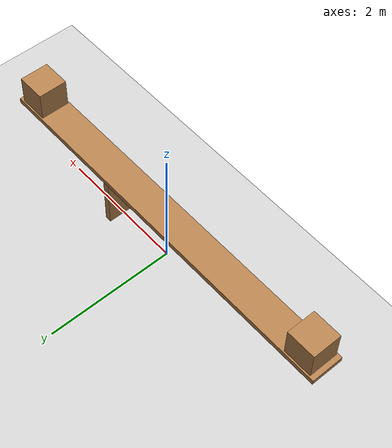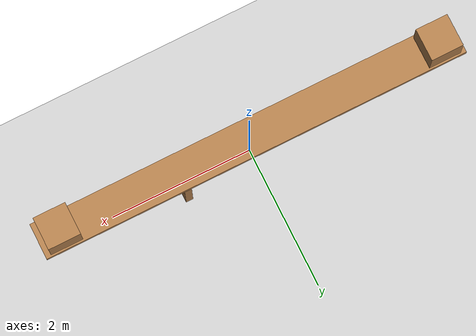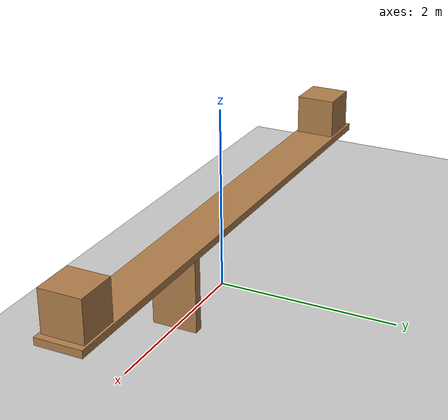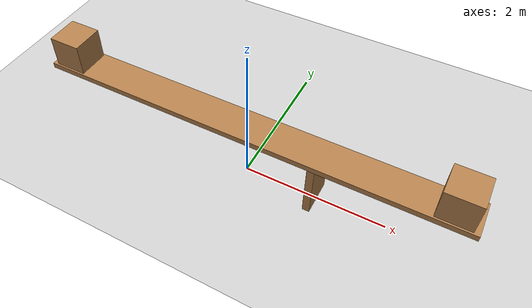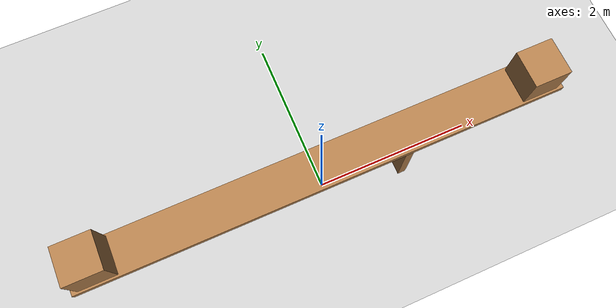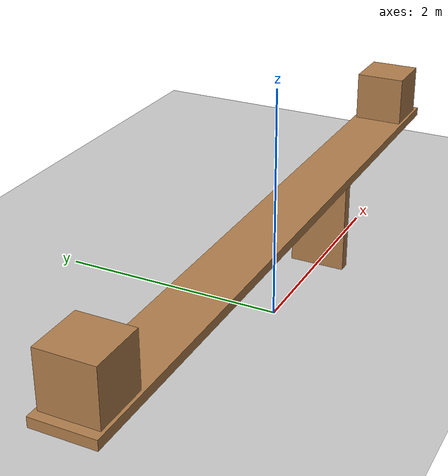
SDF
<?xml version="1.0" ?>

<sdf version='1.5'>
  <world name='default'>
    <physics type='ode'>
      <ode>
        <solver>
          <iters>150</iters>
        </solver>
      </ode>
    </physics>
    <include>
      <uri>model://ground_plane</uri>
    </include>
    <include>
      <uri>model://sun</uri>
    </include>

    <model name='fulcrum'>
      <pose>1 0 0.4 0 0 0</pose>
      <allow_auto_disable>0</allow_auto_disable>
      <link name='link'>
        <inertial>
          <mass>20.000000000000004</mass>
          <inertia>
            <ixx>1.4833333333333338</ixx>
            <ixy>0</ixy>
            <ixz>0</ixz>
            <iyy>1.0833333333333337</iyy>
            <iyz>0</iyz>
            <izz>0.4333333333333334</izz>
          </inertia>
        </inertial>
        <collision name='collision'>
          <geometry>
            <box>
              <size>0.1 0.5 0.8</size>
            </box>
          </geometry>
          <surface>
            <contact>
              <ode>
                <max_vel>0.1</max_vel>
                <min_depth>0.01</min_depth>
              </ode>
            </contact>
          </surface>
        </collision>
        <visual name='visual'>
          <geometry>
            <box>
              <size>0.1 0.5 0.8</size>
            </box>
          </geometry>
          <material>
            <script>
              <name>Gazebo/Wood</name>
              <uri>file://media/materials/scripts/gazebo.material</uri>
            </script>
          </material>
        </visual>
      </link>
    </model>

    <model name='plank'>
      <pose>0 0 0.8400000000000001 0 0 0</pose>
      <allow_auto_disable>0</allow_auto_disable>
      <link name='link'>
	<inertial>
	  <pose>1 0 0 0 0 0</pose>
          <mass>120.0</mass>
          <inertia>
            <ixx>2.564</ixx>
            <ixy>0</ixy>
            <ixz>0</ixz>
            <iyy>360.06399999999996</iyy>
            <iyz>0</iyz>
            <izz>362.5</izz>
          </inertia>
        </inertial>
        <collision name='collision'>
          <geometry>
            <box>
              <size>6.0 0.5 0.08</size>
            </box>
          </geometry>
          <surface>
            <contact>
              <ode>
                <max_vel>0.1</max_vel>
                <min_depth>0.01</min_depth>
              </ode>
            </contact>
          </surface>
        </collision>
        <visual name='visual'>
          <geometry>
            <box>
              <size>6.0 0.5 0.08</size>
            </box>
          </geometry>
          <material>
            <script>
              <name>Gazebo/Wood</name>
              <uri>file://media/materials/scripts/gazebo.material</uri>
            </script>
          </material>
        </visual>
      </link>

      <link name='link1'>
	<pose>-2.7 0 0.265 0 0 0</pose>
        <inertial>
	  <mass>20.934121622</mass>
          <inertia>
            <ixx>1.5377343750000003</ixx>
            <ixy>0</ixy>
            <ixz>0</ixz>
            <iyy>1.5377343750000003</iyy>
            <iyz>0</iyz>
            <izz>1.5377343750000003</izz>
          </inertia>
        </inertial>
        <collision name='collision'>
          <geometry>
            <box>
              <size>0.45 0.45 0.45</size>
            </box>
          </geometry>
          <surface>
            <contact>
              <ode>
                <max_vel>0.1</max_vel>
                <min_depth>0.01</min_depth>
              </ode>
            </contact>
          </surface>
        </collision>
        <visual name='visual'>
          <geometry>
            <box>
              <size>0.45 0.45 0.45</size>
            </box>
          </geometry>
          <material>
            <script>
              <name>Gazebo/Wood</name>
              <uri>file://media/materials/scripts/gazebo.material</uri>
            </script>
          </material>
        </visual>
      </link>

      <link name='link2'>
	<pose>2.7 0 0.265 0 0 0</pose>
        <inertial>
          <mass>45.56250000000001</mass>
          <inertia>
            <ixx>1.5377343750000003</ixx>
            <ixy>0</ixy>
            <ixz>0</ixz>
            <iyy>1.5377343750000003</iyy>
            <iyz>0</iyz>
            <izz>1.5377343750000003</izz>
          </inertia>
        </inertial>
        <collision name='collision'>
          <geometry>
            <box>
              <size>0.45 0.45 0.45</size>
            </box>
          </geometry>
          <surface>
            <contact>
              <ode>
                <max_vel>0.1</max_vel>
                <min_depth>0.01</min_depth>
              </ode>
            </contact>
          </surface>
        </collision>
        <visual name='visual'>
          <geometry>
            <box>
              <size>0.45 0.45 0.45</size>
            </box>
          </geometry>
          <material>
            <script>
              <name>Gazebo/Wood</name>
              <uri>file://media/materials/scripts/gazebo.material</uri>
            </script>
          </material>
        </visual>
      </link>

      <joint name='joint1' type='revolute'>
	<child>link1</child>
	<parent>link</parent>
	<axis>
	  <xyz>1 0 0</xyz>
	  <limit>
	    <lower>-2.35619</lower>
            <upper>2.35619</upper>
            <effort>0</effort>
            <velocity>4</velocity>
	  </limit>
	  <dynamics>
            <damping>1e+07</damping>
            <friction>0</friction>
            <spring_reference>0</spring_reference>
	    <spring_stiffness>0</spring_stiffness>
	  </dynamics>
          <use_parent_model_frame>1</use_parent_model_frame>
        </axis>
        <physics>
	  <ode>
	    <implicit_spring_damper>1</implicit_spring_damper>
	    <cfm_damping>1</cfm_damping>
            <limit>
              <cfm>0</cfm>
              <erp>0.2</erp>
	    </limit>
	  </ode>
        </physics>
      </joint>

      <joint name='joint2' type='revolute'>
        <child>link2</child>
        <parent>link</parent>
        <axis>
          <xyz>1 0 0</xyz>
          <limit>
            <lower>-2.35619</lower>
            <upper>2.35619</upper>
            <effort>0</effort>
            <velocity>4</velocity>
          </limit>
          <dynamics>
            <damping>1e+07</damping>
            <friction>0</friction>
            <spring_reference>0</spring_reference>
            <spring_stiffness>0</spring_stiffness>
          </dynamics>
          <use_parent_model_frame>1</use_parent_model_frame>
        </axis>
        <physics>
          <ode>
            <implicit_spring_damper>1</implicit_spring_damper>
            <cfm_damping>1</cfm_damping>
            <limit>
              <cfm>0</cfm>
              <erp>0.2</erp>
            </limit>
          </ode>
        </physics>
      </joint>
    </model>

    <gui fullscreen='0'>
      <camera name='user_camera'>
        <pose>0 -7 2.41737 0 0.339643 1.5707963267948966</pose>
        <view_controller>orbit</view_controller>
        <projection_type>perspective</projection_type>
      </camera>
    </gui>
  </world>
</sdf>
